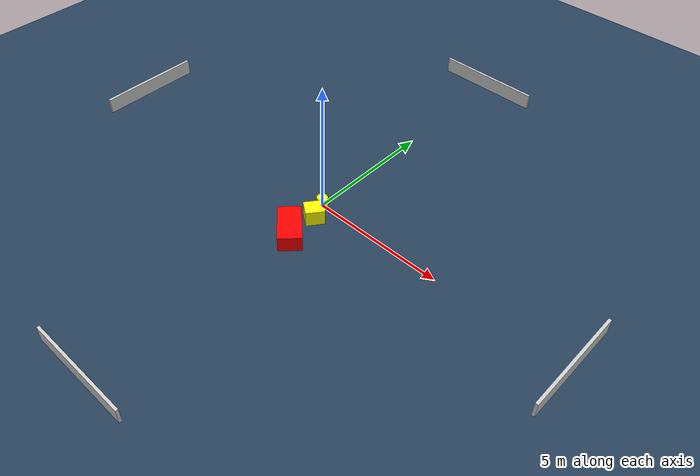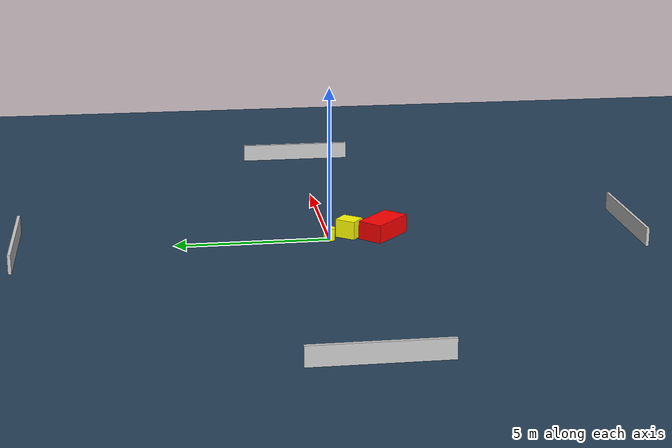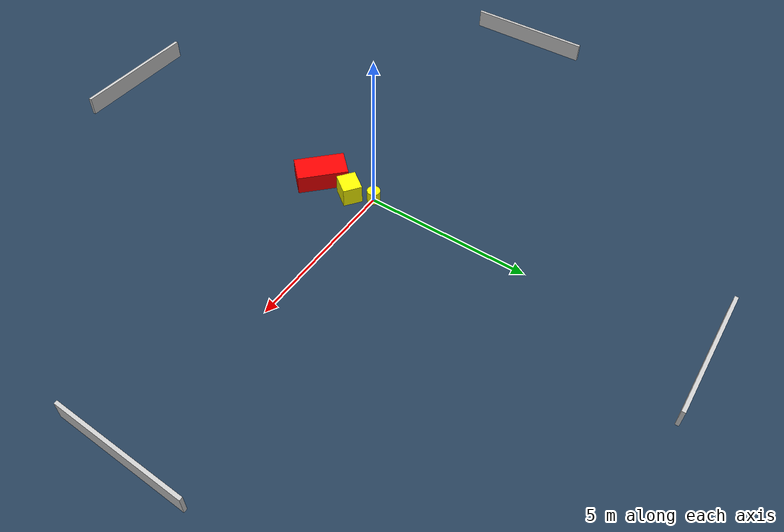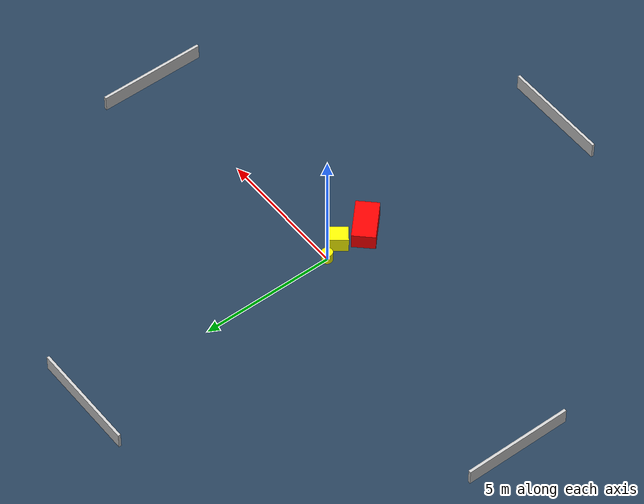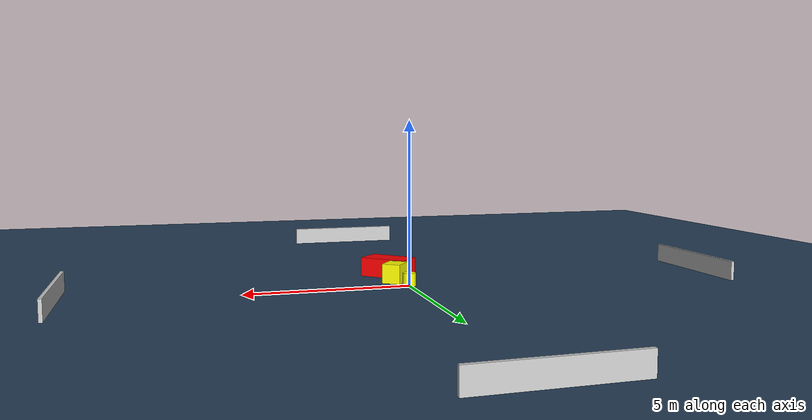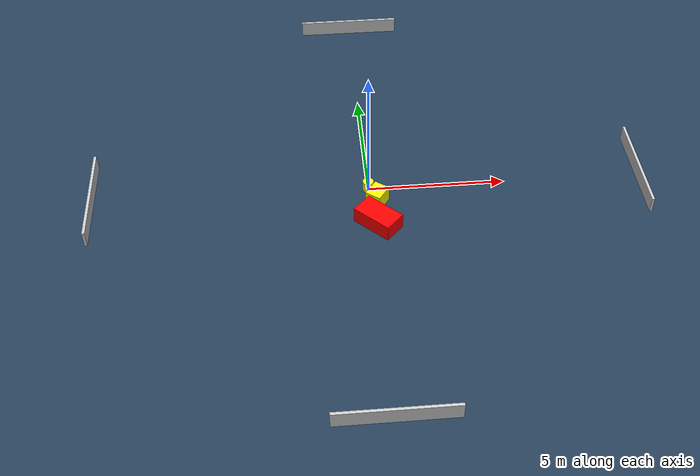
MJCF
<?xml version="1.0" ?>
<mujoco model="generated_environment">
  <option timestep="0.01" integrator="RK4" cone="elliptic"/>
  <default>
    <geom density="1"/>
  </default>
  <asset>
    <texture builtin="gradient" height="3072" name="skybox" rgb1="0.3 0.5 0.7" rgb2="0 0 0" type="skybox" width="512"/>
    <texture builtin="checker" height="300" name="groundplane" rgb1="0.2 0.3 0.4" rgb2="0.1 0.2 0.3" type="2d" width="300"/>
    <material name="groundplane" reflectance="0.2" texrepeat="5 5" texture="groundplane"/>
  </asset>
  <worldbody>
    <light dir="0 0 -1" directional="true" pos="0 0 1.5"/>
    <geom condim="3" friction="0.5 0.005 0.001" material="groundplane" name="floor" pos="0 0 0" size="0 0 0.05" type="plane"/>
    <body name="walls">
      <geom name="wall_1" condim="4" pos="-10.0 0.0 0.3" rgba="0.800000011920929 0.800000011920929 0.800000011920929 1.0" size="0.05 2.0 0.3" type="box"/>
      <geom name="wall_2" condim="4" pos="10.0 0.0 0.3" rgba="0.800000011920929 0.800000011920929 0.800000011920929 1.0" size="0.05 2.0 0.3" type="box"/>
      <geom name="wall_3" condim="4" pos="0.0 -10.0 0.3" rgba="0.800000011920929 0.800000011920929 0.800000011920929 1.0" size="2.0 0.05 0.3" type="box"/>
      <geom name="wall_4" condim="4" pos="0.0 10.0 0.3" rgba="0.800000011920929 0.800000011920929 0.800000011920929 1.0" size="2.0 0.05 0.3" type="box"/>
    </body>
    <body name="robot">
      <joint name="joint_x" type="slide" pos="0 0 0" axis="1 0 0"/>
      <joint name="joint_y" type="slide" pos="0 0 0" axis="0 1 0"/>
      <geom name="robot" type="cylinder" pos="0.0 0.0 0.2" size="0.2 0.2 0.0" mass="5.0" friction="1.0 0.005 0.0001" condim="4" rgba="1.0 1.0 0.0 1.0"/>
    </body>
    <body name="obstacle_1_movable">
      <geom name="obstacle_1_movable" condim="4" pos="0.27359802151231577 -0.6931667203036171 0.3" euler="0 0 143.6816054188986" friction="0.0 0.005 0.001" rgba="1.0 1.0 0.0 1.0" size="0.29009087744817985 0.3414838976026652 0.3" type="box" mass="0.1"/>
      <joint type="free"/>
    </body>
    <body name="obstacle_2_static">
      <geom name="obstacle_2_static" condim="4" pos="0.20122862191844146 -1.7988889254497302 0.3" euler="0 0 46.282059417980264" friction="0.0 0.005 0.001" rgba="1.0 0.0 0.0 1.0" size="0.4225037759666804 0.7667781181460547 0.3" type="box"/>
    </body>
  </worldbody>
  <actuator>
    <motor name="actuator_x" joint="joint_x" gear="1" ctrlrange="-1 1"/>
    <motor name="actuator_y" joint="joint_y" gear="1" ctrlrange="-1 1"/>
  </actuator>
</mujoco>
